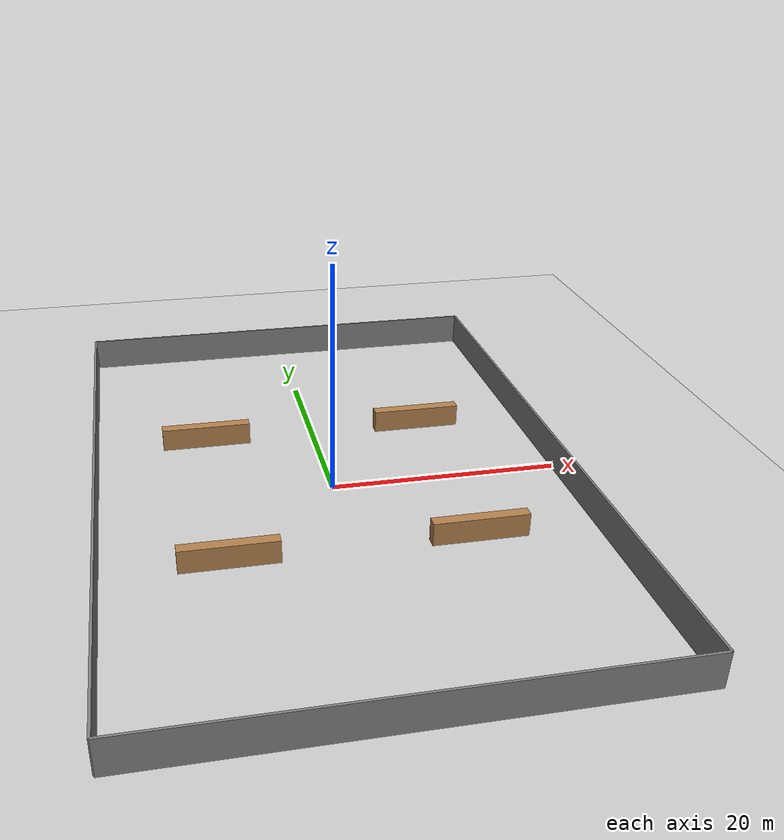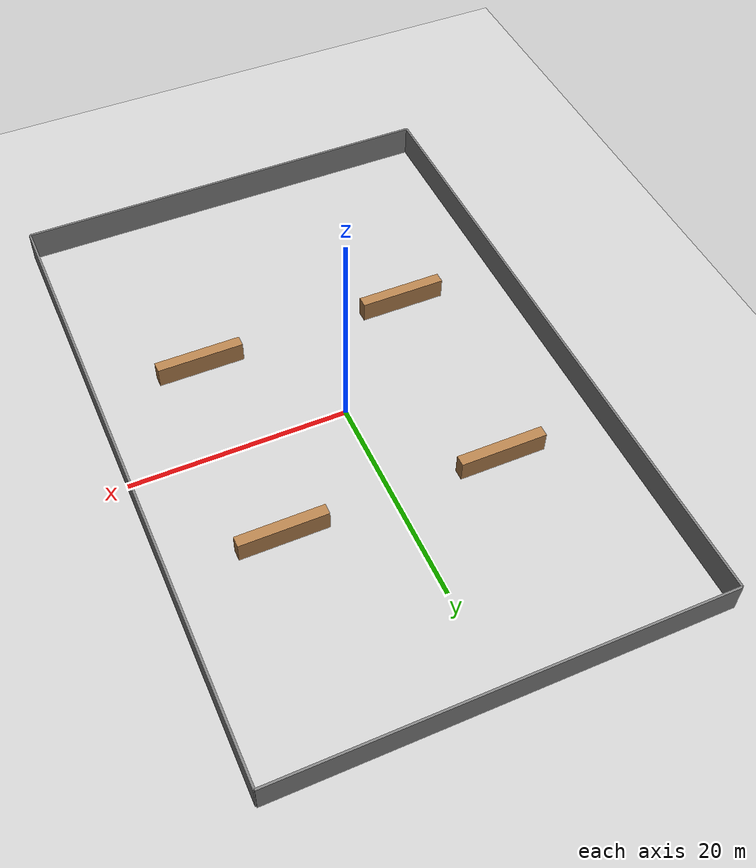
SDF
<?xml version="1.0"?>
<!-- Warehouse World for Gazebo Ignition (Fortress) -->
<sdf version="1.8">
  <world name="warehouse">

    <!-- Physics plugin -->
    <plugin
      filename="gz-sim-physics-system"
      name="gz::sim::systems::Physics">
    </plugin>

    <!-- User commands (for GUI interaction) -->
    <plugin
      filename="gz-sim-user-commands-system"
      name="gz::sim::systems::UserCommands">
    </plugin>

    <!-- Scene broadcaster -->
    <plugin
      filename="gz-sim-scene-broadcaster-system"
      name="gz::sim::systems::SceneBroadcaster">
    </plugin>

    <!-- Sensors -->
    <plugin
      filename="gz-sim-sensors-system"
      name="gz::sim::systems::Sensors">
      <render_engine>ogre2</render_engine>
    </plugin>

    <physics name="1ms" type="ignored">
      <max_step_size>0.001</max_step_size>
      <real_time_factor>1.0</real_time_factor>
    </physics>

    <scene>
      <ambient>0.4 0.4 0.4 1</ambient>
      <background>0.7 0.7 0.7 1</background>
      <shadows>true</shadows>
      <grid>false</grid>
    </scene>

    <!-- Lighting -->
    <light name="sun" type="directional">
      <cast_shadows>true</cast_shadows>
      <pose>0 0 10 0 0 0</pose>
      <diffuse>0.8 0.8 0.8 1</diffuse>
      <specular>0.2 0.2 0.2 1</specular>
      <direction>-0.5 0.1 -0.9</direction>
    </light>

    <!-- Ground Plane -->
    <model name="ground_plane">
      <static>true</static>
      <link name="link">
        <collision name="collision">
          <geometry>
            <plane>
              <normal>0 0 1</normal>
              <size>100 100</size>
            </plane>
          </geometry>
        </collision>
        <visual name="visual">
          <geometry>
            <plane>
              <normal>0 0 1</normal>
              <size>100 100</size>
            </plane>
          </geometry>
          <material>
            <ambient>0.8 0.8 0.8 1</ambient>
            <diffuse>0.8 0.8 0.8 1</diffuse>
          </material>
        </visual>
      </link>
    </model>

    <!-- Warehouse Boundaries (40m x 60m) -->
    <!-- North Wall -->
    <model name="wall_north">
      <static>true</static>
      <pose>0 30 1.5 0 0 0</pose>
      <link name="link">
        <collision name="collision">
          <geometry>
            <box>
              <size>40 0.2 3</size>
            </box>
          </geometry>
        </collision>
        <visual name="visual">
          <geometry>
            <box>
              <size>40 0.2 3</size>
            </box>
          </geometry>
          <material>
            <ambient>0.5 0.5 0.5 1</ambient>
            <diffuse>0.5 0.5 0.5 1</diffuse>
          </material>
        </visual>
      </link>
    </model>

    <!-- South Wall -->
    <model name="wall_south">
      <static>true</static>
      <pose>0 -30 1.5 0 0 0</pose>
      <link name="link">
        <collision name="collision">
          <geometry>
            <box>
              <size>40 0.2 3</size>
            </box>
          </geometry>
        </collision>
        <visual name="visual">
          <geometry>
            <box>
              <size>40 0.2 3</size>
            </box>
          </geometry>
          <material>
            <ambient>0.5 0.5 0.5 1</ambient>
            <diffuse>0.5 0.5 0.5 1</diffuse>
          </material>
        </visual>
      </link>
    </model>

    <!-- East Wall -->
    <model name="wall_east">
      <static>true</static>
      <pose>20 0 1.5 0 0 0</pose>
      <link name="link">
        <collision name="collision">
          <geometry>
            <box>
              <size>0.2 60 3</size>
            </box>
          </geometry>
        </collision>
        <visual name="visual">
          <geometry>
            <box>
              <size>0.2 60 3</size>
            </box>
          </geometry>
          <material>
            <ambient>0.5 0.5 0.5 1</ambient>
            <diffuse>0.5 0.5 0.5 1</diffuse>
          </material>
        </visual>
      </link>
    </model>

    <!-- West Wall -->
    <model name="wall_west">
      <static>true</static>
      <pose>-20 0 1.5 0 0 0</pose>
      <link name="link">
        <collision name="collision">
          <geometry>
            <box>
              <size>0.2 60 3</size>
            </box>
          </geometry>
        </collision>
        <visual name="visual">
          <geometry>
            <box>
              <size>0.2 60 3</size>
            </box>
          </geometry>
          <material>
            <ambient>0.5 0.5 0.5 1</ambient>
            <diffuse>0.5 0.5 0.5 1</diffuse>
          </material>
        </visual>
      </link>
    </model>

    <!-- Obstacles (shelving units) -->
    <model name="shelf_1">
      <static>true</static>
      <pose>-10 10 1 0 0 0</pose>
      <link name="link">
        <collision name="collision">
          <geometry>
            <box>
              <size>8 1 2</size>
            </box>
          </geometry>
        </collision>
        <visual name="visual">
          <geometry>
            <box>
              <size>8 1 2</size>
            </box>
          </geometry>
          <material>
            <ambient>0.7 0.5 0.3 1</ambient>
            <diffuse>0.7 0.5 0.3 1</diffuse>
          </material>
        </visual>
      </link>
    </model>

    <model name="shelf_2">
      <static>true</static>
      <pose>-10 -10 1 0 0 0</pose>
      <link name="link">
        <collision name="collision">
          <geometry>
            <box>
              <size>8 1 2</size>
            </box>
          </geometry>
        </collision>
        <visual name="visual">
          <geometry>
            <box>
              <size>8 1 2</size>
            </box>
          </geometry>
          <material>
            <ambient>0.7 0.5 0.3 1</ambient>
            <diffuse>0.7 0.5 0.3 1</diffuse>
          </material>
        </visual>
      </link>
    </model>

    <model name="shelf_3">
      <static>true</static>
      <pose>10 10 1 0 0 0</pose>
      <link name="link">
        <collision name="collision">
          <geometry>
            <box>
              <size>8 1 2</size>
            </box>
          </geometry>
        </collision>
        <visual name="visual">
          <geometry>
            <box>
              <size>8 1 2</size>
            </box>
          </geometry>
          <material>
            <ambient>0.7 0.5 0.3 1</ambient>
            <diffuse>0.7 0.5 0.3 1</diffuse>
          </material>
        </visual>
      </link>
    </model>

    <model name="shelf_4">
      <static>true</static>
      <pose>10 -10 1 0 0 0</pose>
      <link name="link">
        <collision name="collision">
          <geometry>
            <box>
              <size>8 1 2</size>
            </box>
          </geometry>
        </collision>
        <visual name="visual">
          <geometry>
            <box>
              <size>8 1 2</size>
            </box>
          </geometry>
          <material>
            <ambient>0.7 0.5 0.3 1</ambient>
            <diffuse>0.7 0.5 0.3 1</diffuse>
          </material>
        </visual>
      </link>
    </model>

  </world>
</sdf>
